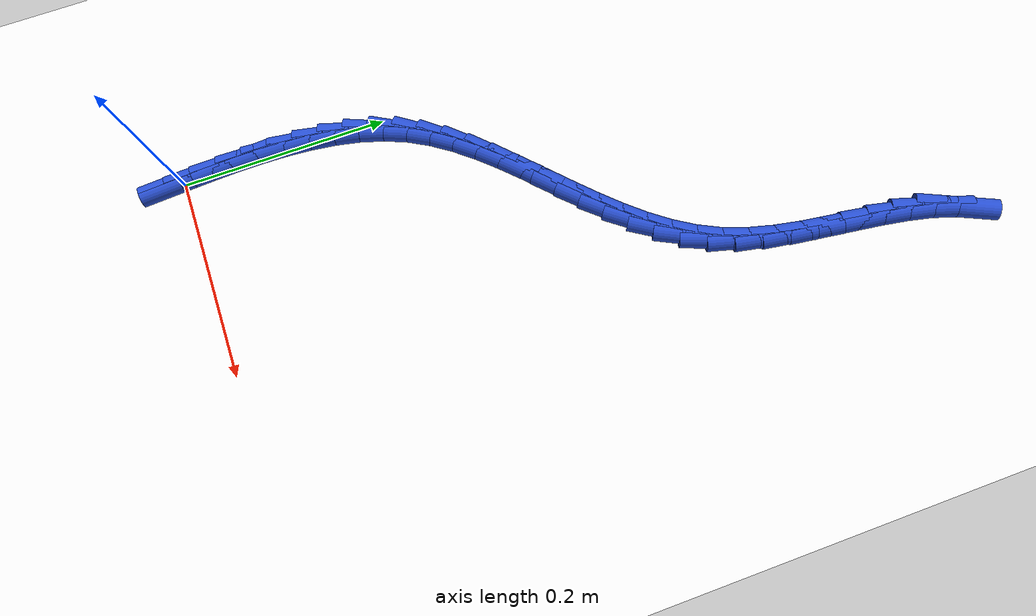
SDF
<sdf version="1.6">
 <world name="default">
  <model name="ground_plane">
   <static>1</static>
   <link name="link">
    <collision name="collision">
     <geometry><plane><normal>0 0 1</normal><size>100 100</size></plane></geometry>
     <surface><friction><ode><mu>100</mu><mu2>50</mu2></ode></friction></surface>
    </collision>
    <visual name="visual">
     <cast_shadows>0</cast_shadows>
     <geometry><plane><normal>0 0 1</normal><size>100 100</size></plane></geometry>
     <material>
      <script><uri>file://media/materials/scripts/gazebo.material</uri><name>Gazebo/WhiteGlow</name></script>
     </material>
    </visual>
   </link>
  </model>
  <model name="line">
   <link name="link_0">
    <pose>-2.8189256484623115e-18 1.3877787807814457e-17 0.01 0 1.57 -1.5117144280153771</pose>
    <collision name="collision">
     <geometry><cylinder><radius>0.01</radius><length>0.08</length></cylinder></geometry>
    </collision>
    <visual name="visual">
     <material>
      <script><name>Gazebo/Blue</name><uri>file://media/materials/scripts/gazebo.material</uri></script>
     </material>
     <geometry><cylinder><radius>0.01</radius><length>0.08</length></cylinder></geometry>
    </visual>
   </link>
   <link name="link_1">
    <pose>-0.001506811303396147 0.025474090468086723 0.01 0 1.57 -1.5299592313047388</pose>
    <collision name="collision">
     <geometry><cylinder><radius>0.01</radius><length>0.08</length></cylinder></geometry>
    </collision>
    <visual name="visual">
     <material>
      <script><name>Gazebo/Blue</name><uri>file://media/materials/scripts/gazebo.material</uri></script>
     </material>
     <geometry><cylinder><radius>0.01</radius><length>0.08</length></cylinder></geometry>
    </visual>
   </link>
   <link name="link_2">
    <pose>-0.002555461278012365 0.05113867223505533 0.01 0 1.57 -1.557647988186349</pose>
    <collision name="collision">
     <geometry><cylinder><radius>0.01</radius><length>0.08</length></cylinder></geometry>
    </collision>
    <visual name="visual">
     <material>
      <script><name>Gazebo/Blue</name><uri>file://media/materials/scripts/gazebo.material</uri></script>
     </material>
     <geometry><cylinder><radius>0.01</radius><length>0.08</length></cylinder></geometry>
    </visual>
   </link>
   <link name="link_3">
    <pose>-0.0028930214002868436 0.07681040763593029 0.01 0 1.57 1.546229993007412</pose>
    <collision name="collision">
     <geometry><cylinder><radius>0.01</radius><length>0.08</length></cylinder></geometry>
    </collision>
    <visual name="visual">
     <material>
      <script><name>Gazebo/Blue</name><uri>file://media/materials/scripts/gazebo.material</uri></script>
     </material>
     <geometry><cylinder><radius>0.01</radius><length>0.08</length></cylinder></geometry>
    </visual>
   </link>
   <link name="link_4">
    <pose>-0.002266563146657771 0.10230595900573604 0.01 0 1.57 1.4975902166373434</pose>
    <collision name="collision">
     <geometry><cylinder><radius>0.01</radius><length>0.08</length></cylinder></geometry>
    </collision>
    <visual name="visual">
     <material>
      <script><name>Gazebo/Blue</name><uri>file://media/materials/scripts/gazebo.material</uri></script>
     </material>
     <geometry><cylinder><radius>0.01</radius><length>0.08</length></cylinder></geometry>
    </visual>
   </link>
   <link name="link_5">
    <pose>-0.00042315799356333443 0.12744198867949702 0.01 0 1.57 1.436879056118633</pose>
    <collision name="collision">
     <geometry><cylinder><radius>0.01</radius><length>0.08</length></cylinder></geometry>
    </collision>
    <visual name="visual">
     <material>
      <script><name>Gazebo/Blue</name><uri>file://media/materials/scripts/gazebo.material</uri></script>
     </material>
     <geometry><cylinder><radius>0.01</radius><length>0.08</length></cylinder></geometry>
    </visual>
   </link>
   <link name="link_6">
    <pose>0.0028901225825582813 0.15203515899223768 0.01 0 1.57 1.3628404191255201</pose>
    <collision name="collision">
     <geometry><cylinder><radius>0.01</radius><length>0.08</length></cylinder></geometry>
    </collision>
    <visual name="visual">
     <material>
      <script><name>Gazebo/Blue</name><uri>file://media/materials/scripts/gazebo.material</uri></script>
     </material>
     <geometry><cylinder><radius>0.01</radius><length>0.08</length></cylinder></geometry>
    </visual>
   </link>
   <link name="link_7">
    <pose>0.007926207105268883 0.17590213227898244 0.01 0 1.57 1.2743682834089847</pose>
    <collision name="collision">
     <geometry><cylinder><radius>0.01</radius><length>0.08</length></cylinder></geometry>
    </collision>
    <visual name="visual">
     <material>
      <script><name>Gazebo/Blue</name><uri>file://media/materials/scripts/gazebo.material</uri></script>
     </material>
     <geometry><cylinder><radius>0.01</radius><length>0.08</length></cylinder></geometry>
    </visual>
   </link>
   <link name="link_8">
    <pose>0.01493802409813029 0.19885957087475575 0.01 0 1.57 1.1709403761467672</pose>
    <collision name="collision">
     <geometry><cylinder><radius>0.01</radius><length>0.08</length></cylinder></geometry>
    </collision>
    <visual name="visual">
     <material>
      <script><name>Gazebo/Blue</name><uri>file://media/materials/scripts/gazebo.material</uri></script>
     </material>
     <geometry><cylinder><radius>0.01</radius><length>0.08</length></cylinder></geometry>
    </visual>
   </link>
   <link name="link_9">
    <pose>0.024178502084704293 0.22072413711458208 0.01 0 1.57 1.0573451769031341</pose>
    <collision name="collision">
     <geometry><cylinder><radius>0.01</radius><length>0.08</length></cylinder></geometry>
    </collision>
    <visual name="visual">
     <material>
      <script><name>Gazebo/Blue</name><uri>file://media/materials/scripts/gazebo.material</uri></script>
     </material>
     <geometry><cylinder><radius>0.01</radius><length>0.08</length></cylinder></geometry>
    </visual>
   </link>
   <link name="link_10">
    <pose>0.03581740416147154 0.2413642046069595 0.01 0 1.57 0.9569185156231231</pose>
    <collision name="collision">
     <geometry><cylinder><radius>0.01</radius><length>0.08</length></cylinder></geometry>
    </collision>
    <visual name="visual">
     <material>
      <script><name>Gazebo/Blue</name><uri>file://media/materials/scripts/gazebo.material</uri></script>
     </material>
     <geometry><cylinder><radius>0.01</radius><length>0.08</length></cylinder></geometry>
    </visual>
   </link>
   <link name="link_11">
    <pose>0.04959508432064911 0.26091514843446023 0.01 0 1.57 0.8776598009401864</pose>
    <collision name="collision">
     <geometry><cylinder><radius>0.01</radius><length>0.08</length></cylinder></geometry>
    </collision>
    <visual name="visual">
     <material>
      <script><name>Gazebo/Blue</name><uri>file://media/materials/scripts/gazebo.material</uri></script>
     </material>
     <geometry><cylinder><radius>0.01</radius><length>0.08</length></cylinder></geometry>
    </visual>
   </link>
   <link name="link_12">
    <pose>0.06511370963853909 0.27959826666051685 0.01 0 1.57 0.819053568729166</pose>
    <collision name="collision">
     <geometry><cylinder><radius>0.01</radius><length>0.08</length></cylinder></geometry>
    </collision>
    <visual name="visual">
     <material>
      <script><name>Gazebo/Blue</name><uri>file://media/materials/scripts/gazebo.material</uri></script>
     </material>
     <geometry><cylinder><radius>0.01</radius><length>0.08</length></cylinder></geometry>
    </visual>
   </link>
   <link name="link_13">
    <pose>0.08197538117735292 0.29763489839533874 0.01 0 1.57 0.7798831479889483</pose>
    <collision name="collision">
     <geometry><cylinder><radius>0.01</radius><length>0.08</length></cylinder></geometry>
    </collision>
    <visual name="visual">
     <material>
      <script><name>Gazebo/Blue</name><uri>file://media/materials/scripts/gazebo.material</uri></script>
     </material>
     <geometry><cylinder><radius>0.01</radius><length>0.08</length></cylinder></geometry>
    </visual>
   </link>
   <link name="link_14">
    <pose>0.09978219999930193 0.3152463827491349 0.01 0 1.57 0.7589405536218834</pose>
    <collision name="collision">
     <geometry><cylinder><radius>0.01</radius><length>0.08</length></cylinder></geometry>
    </collision>
    <visual name="visual">
     <material>
      <script><name>Gazebo/Blue</name><uri>file://media/materials/scripts/gazebo.material</uri></script>
     </material>
     <geometry><cylinder><radius>0.01</radius><length>0.08</length></cylinder></geometry>
    </visual>
   </link>
   <link name="link_15">
    <pose>0.11813626716659766 0.33265405883211496 0.01 0 1.57 0.7553973994165484</pose>
    <collision name="collision">
     <geometry><cylinder><radius>0.01</radius><length>0.08</length></cylinder></geometry>
    </collision>
    <visual name="visual">
     <material>
      <script><name>Gazebo/Blue</name><uri>file://media/materials/scripts/gazebo.material</uri></script>
     </material>
     <geometry><cylinder><radius>0.01</radius><length>0.08</length></cylinder></geometry>
    </visual>
   </link>
   <link name="link_16">
    <pose>0.13663968374145144 0.35007926575448783 0.01 0 1.57 0.7689517749209385</pose>
    <collision name="collision">
     <geometry><cylinder><radius>0.01</radius><length>0.08</length></cylinder></geometry>
    </collision>
    <visual name="visual">
     <material>
      <script><name>Gazebo/Blue</name><uri>file://media/materials/scripts/gazebo.material</uri></script>
     </material>
     <geometry><cylinder><radius>0.01</radius><length>0.08</length></cylinder></geometry>
    </visual>
   </link>
   <link name="link_17">
    <pose>0.1548945507860747 0.3677433426264628 0.01 0 1.57 0.7998340010237655</pose>
    <collision name="collision">
     <geometry><cylinder><radius>0.01</radius><length>0.08</length></cylinder></geometry>
    </collision>
    <visual name="visual">
     <material>
      <script><name>Gazebo/Blue</name><uri>file://media/materials/scripts/gazebo.material</uri></script>
     </material>
     <geometry><cylinder><radius>0.01</radius><length>0.08</length></cylinder></geometry>
    </visual>
   </link>
   <link name="link_18">
    <pose>0.17250296936267875 0.3858676285582491 0.01 0 1.57 0.8486940173227783</pose>
    <collision name="collision">
     <geometry><cylinder><radius>0.01</radius><length>0.08</length></cylinder></geometry>
    </collision>
    <visual name="visual">
     <material>
      <script><name>Gazebo/Blue</name><uri>file://media/materials/scripts/gazebo.material</uri></script>
     </material>
     <geometry><cylinder><radius>0.01</radius><length>0.08</length></cylinder></geometry>
    </visual>
   </link>
   <link name="link_19">
    <pose>0.18906704053347528 0.4046734626600561 0.01 0 1.57 0.9163364681718884</pose>
    <collision name="collision">
     <geometry><cylinder><radius>0.01</radius><length>0.08</length></cylinder></geometry>
    </collision>
    <visual name="visual">
     <material>
      <script><name>Gazebo/Blue</name><uri>file://media/materials/scripts/gazebo.material</uri></script>
     </material>
     <geometry><cylinder><radius>0.01</radius><length>0.08</length></cylinder></geometry>
    </visual>
   </link>
   <link name="link_20">
    <pose>0.20418886536067538 0.42438218404209294 0.01 0 1.57 1.0032356528485156</pose>
    <collision name="collision">
     <geometry><cylinder><radius>0.01</radius><length>0.08</length></cylinder></geometry>
    </collision>
    <visual name="visual">
     <material>
      <script><name>Gazebo/Blue</name><uri>file://media/materials/scripts/gazebo.material</uri></script>
     </material>
     <geometry><cylinder><radius>0.01</radius><length>0.08</length></cylinder></geometry>
    </visual>
   </link>
   <link name="link_21">
    <pose>0.21747054490649068 0.44521513181456884 0.01 0 1.57 1.1087956753259751</pose>
    <collision name="collision">
     <geometry><cylinder><radius>0.01</radius><length>0.08</length></cylinder></geometry>
    </collision>
    <visual name="visual">
     <material>
      <script><name>Gazebo/Blue</name><uri>file://media/materials/scripts/gazebo.material</uri></script>
     </material>
     <geometry><cylinder><radius>0.01</radius><length>0.08</length></cylinder></geometry>
    </visual>
   </link>
   <link name="link_22">
    <pose>0.22851418023313252 0.4673936450876931 0.01 0 1.57 1.223546171626963</pose>
    <collision name="collision">
     <geometry><cylinder><radius>0.01</radius><length>0.08</length></cylinder></geometry>
    </collision>
    <visual name="visual">
     <material>
      <script><name>Gazebo/Blue</name><uri>file://media/materials/scripts/gazebo.material</uri></script>
     </material>
     <geometry><cylinder><radius>0.01</radius><length>0.08</length></cylinder></geometry>
    </visual>
   </link>
   <link name="link_23">
    <pose>0.2370727837926084 0.491041725451504 0.01 0 1.57 1.3165023566183214</pose>
    <collision name="collision">
     <geometry><cylinder><radius>0.01</radius><length>0.08</length></cylinder></geometry>
    </collision>
    <visual name="visual">
     <material>
      <script><name>Gazebo/Blue</name><uri>file://media/materials/scripts/gazebo.material</uri></script>
     </material>
     <geometry><cylinder><radius>0.01</radius><length>0.08</length></cylinder></geometry>
    </visual>
   </link>
   <link name="link_24">
    <pose>0.24352819431687692 0.5158777829048992 0.01 0 1.57 1.3820247642812524</pose>
    <collision name="collision">
     <geometry><cylinder><radius>0.01</radius><length>0.08</length></cylinder></geometry>
    </collision>
    <visual name="visual">
     <material>
      <script><name>Gazebo/Blue</name><uri>file://media/materials/scripts/gazebo.material</uri></script>
     </material>
     <geometry><cylinder><radius>0.01</radius><length>0.08</length></cylinder></geometry>
    </visual>
   </link>
   <link name="link_25">
    <pose>0.24842601268147602 0.5415146012181964 0.01 0 1.57 1.4227221613805792</pose>
    <collision name="collision">
     <geometry><cylinder><radius>0.01</radius><length>0.08</length></cylinder></geometry>
    </collision>
    <visual name="visual">
     <material>
      <script><name>Gazebo/Blue</name><uri>file://media/materials/scripts/gazebo.material</uri></script>
     </material>
     <geometry><cylinder><radius>0.01</radius><length>0.08</length></cylinder></geometry>
    </visual>
   </link>
   <link name="link_26">
    <pose>0.25231184015934655 0.5675649639053896 0.01 0 1.57 1.4404102094580056</pose>
    <collision name="collision">
     <geometry><cylinder><radius>0.01</radius><length>0.08</length></cylinder></geometry>
    </collision>
    <visual name="visual">
     <material>
      <script><name>Gazebo/Blue</name><uri>file://media/materials/scripts/gazebo.material</uri></script>
     </material>
     <geometry><cylinder><radius>0.01</radius><length>0.08</length></cylinder></geometry>
    </visual>
   </link>
   <link name="link_27">
    <pose>0.2557312780234293 0.5936416544804726 0.01 0 1.57 1.4355759765988942</pose>
    <collision name="collision">
     <geometry><cylinder><radius>0.01</radius><length>0.08</length></cylinder></geometry>
    </collision>
    <visual name="visual">
     <material>
      <script><name>Gazebo/Blue</name><uri>file://media/materials/scripts/gazebo.material</uri></script>
     </material>
     <geometry><cylinder><radius>0.01</radius><length>0.08</length></cylinder></geometry>
    </visual>
   </link>
   <link name="link_28">
    <pose>0.2592299275466653 0.6193574564574391 0.01 0 1.57 1.4071218423352965</pose>
    <collision name="collision">
     <geometry><cylinder><radius>0.01</radius><length>0.08</length></cylinder></geometry>
    </collision>
    <visual name="visual">
     <material>
      <script><name>Gazebo/Blue</name><uri>file://media/materials/scripts/gazebo.material</uri></script>
     </material>
     <geometry><cylinder><radius>0.01</radius><length>0.08</length></cylinder></geometry>
    </visual>
   </link>
   <link name="link_29">
    <pose>0.26335339000199526 0.6443251533502827 0.01 0 1.57 1.3522156196749635</pose>
    <collision name="collision">
     <geometry><cylinder><radius>0.01</radius><length>0.08</length></cylinder></geometry>
    </collision>
    <visual name="visual">
     <material>
      <script><name>Gazebo/Blue</name><uri>file://media/materials/scripts/gazebo.material</uri></script>
     </material>
     <geometry><cylinder><radius>0.01</radius><length>0.08</length></cylinder></geometry>
    </visual>
   </link>
   <link name="link_30">
    <pose>0.2686472666623604 0.6681575286729979 0.01 0 1.57 1.2663576912355214</pose>
    <collision name="collision">
     <geometry><cylinder><radius>0.01</radius><length>0.08</length></cylinder></geometry>
    </collision>
    <visual name="visual">
     <material>
      <script><name>Gazebo/Blue</name><uri>file://media/materials/scripts/gazebo.material</uri></script>
     </material>
     <geometry><cylinder><radius>0.01</radius><length>0.08</length></cylinder></geometry>
    </visual>
   </link>
   <link name="link_31">
    <pose>0.2756571588007012 0.6904673659395779 0.01 0 1.57 1.1442198601092042</pose>
    <collision name="collision">
     <geometry><cylinder><radius>0.01</radius><length>0.08</length></cylinder></geometry>
    </collision>
    <visual name="visual">
     <material>
      <script><name>Gazebo/Blue</name><uri>file://media/materials/scripts/gazebo.material</uri></script>
     </material>
     <geometry><cylinder><radius>0.01</radius><length>0.08</length></cylinder></geometry>
    </visual>
   </link>
   <link name="link_280">
    <pose>6.938893903907228e-18 -9.020562075079397e-17 0.01 0 1.57 -1.5100799949577752</pose>
    <collision name="collision">
     <geometry><cylinder><radius>0.01</radius><length>0.08</length></cylinder></geometry>
    </collision>
    <visual name="visual">
     <material>
      <script><name>Gazebo/Blue</name><uri>file://media/materials/scripts/gazebo.material</uri></script>
     </material>
     <geometry><cylinder><radius>0.01</radius><length>0.08</length></cylinder></geometry>
    </visual>
   </link>
   <link name="link_281">
    <pose>-0.001551098247946534 0.02551523956120814 0.01 0 1.57 -1.5184925854114615</pose>
    <collision name="collision">
     <geometry><cylinder><radius>0.01</radius><length>0.08</length></cylinder></geometry>
    </collision>
    <visual name="visual">
     <material>
      <script><name>Gazebo/Blue</name><uri>file://media/materials/scripts/gazebo.material</uri></script>
     </material>
     <geometry><cylinder><radius>0.01</radius><length>0.08</length></cylinder></geometry>
    </visual>
   </link>
   <link name="link_282">
    <pose>-0.002909756834415557 0.05146786498002803 0.01 0 1.57 -1.5143210356334456</pose>
    <collision name="collision">
     <geometry><cylinder><radius>0.01</radius><length>0.08</length></cylinder></geometry>
    </collision>
    <visual name="visual">
     <material>
      <script><name>Gazebo/Blue</name><uri>file://media/materials/scripts/gazebo.material</uri></script>
     </material>
     <geometry><cylinder><radius>0.01</radius><length>0.08</length></cylinder></geometry>
    </visual>
   </link>
  </model>
 </world>
</sdf>
